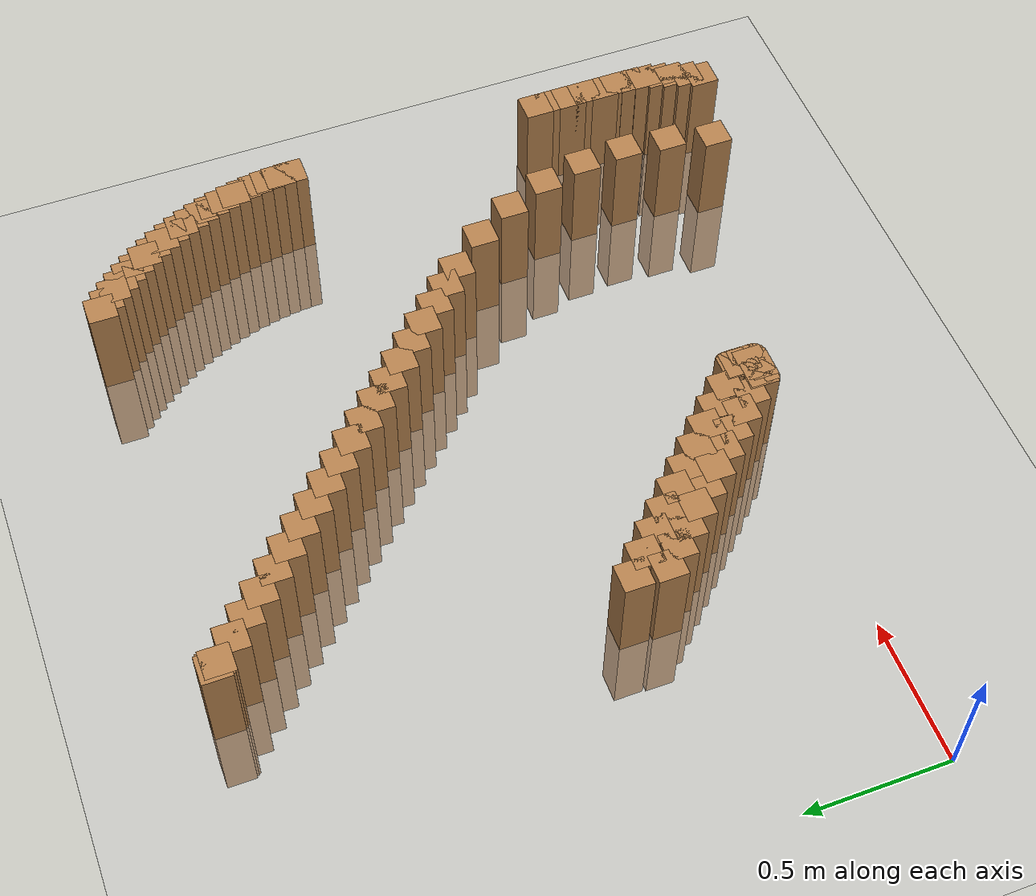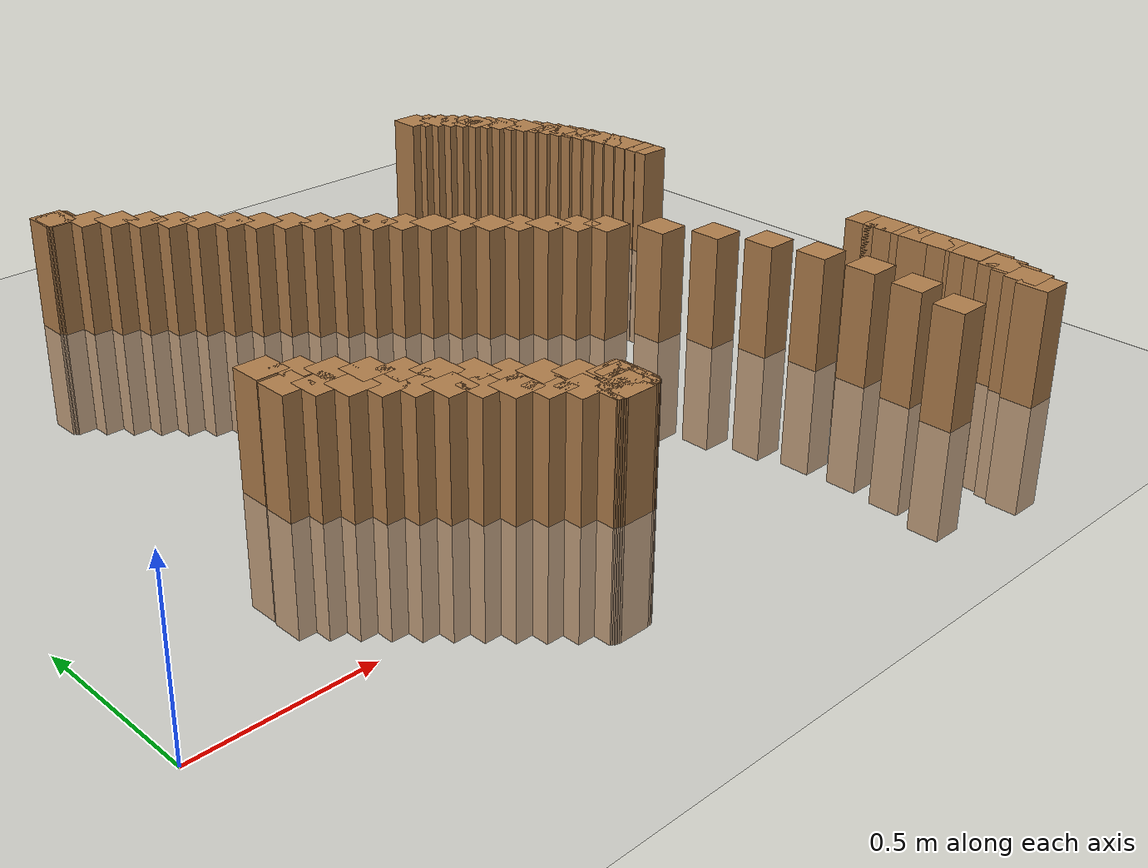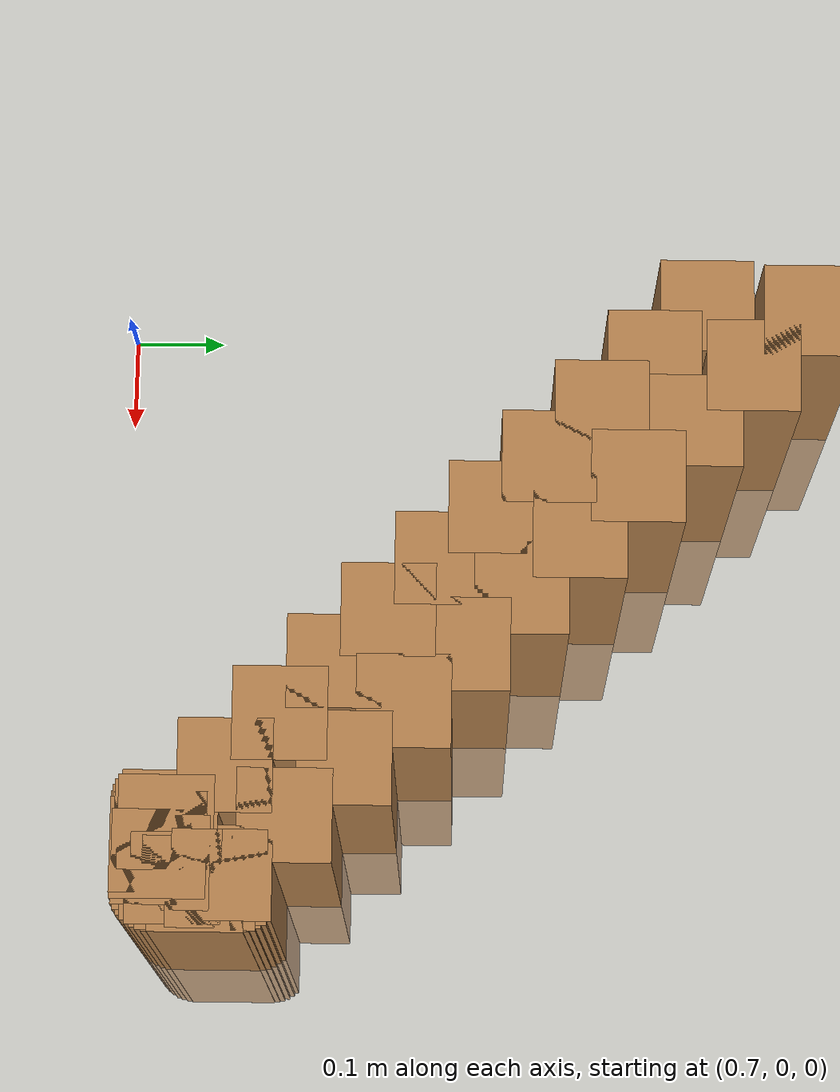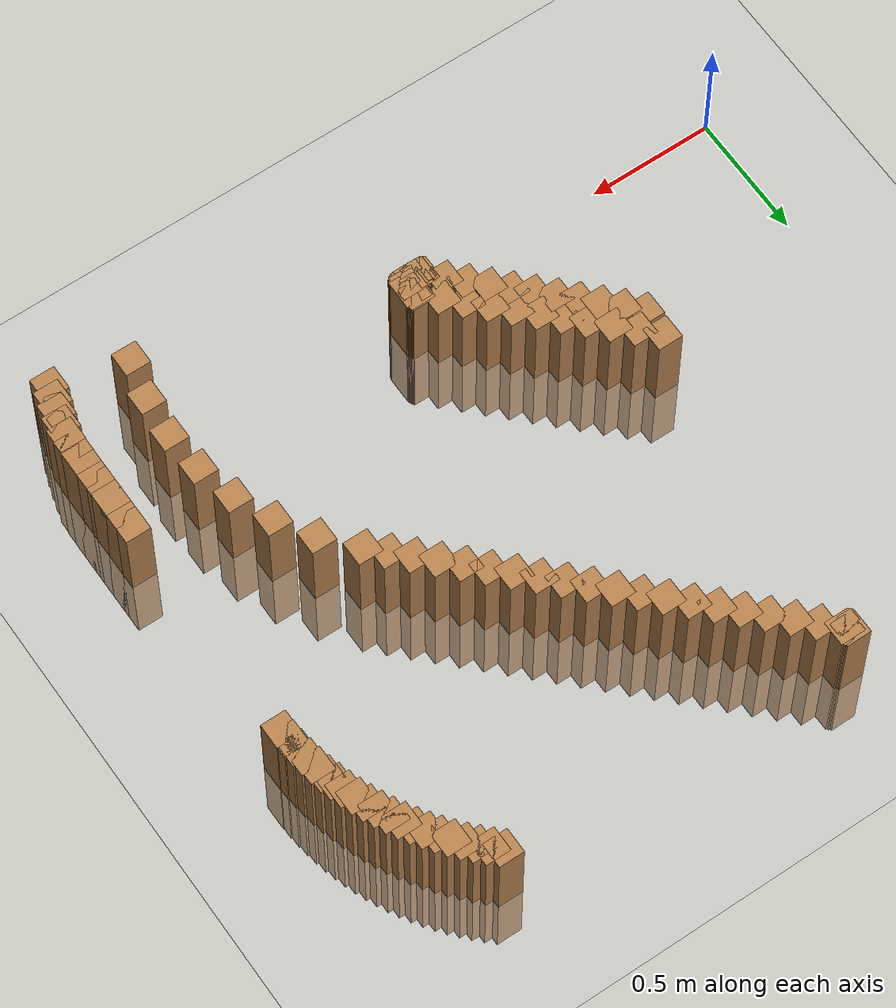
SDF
<sdf version="1.6">
 <world name="default">
  <model name="ground_plane">
   <static>1</static>
   <link name="link">
    <collision name="collision">
     <geometry><plane><normal>0 0 1</normal><size>100 100</size></plane></geometry>
     <surface><friction><ode><mu>100</mu><mu2>50</mu2></ode></friction></surface>
    </collision>
    <visual name="visual">
     <cast_shadows>0</cast_shadows>
     <geometry><plane><normal>0 0 1</normal><size>100 100</size></plane></geometry>
     <material>
      <script><uri>file://media/materials/scripts/gazebo.material</uri><name>Gazebo/Grey</name></script>
     </material>
    </visual>
   </link>
  </model>
  <model name="track">
   <link name="inner_48">
    <pose>0.750307 0.638306 0.000000 0 -0 0</pose>
    <collision name="collision"><geometry><box><size>0.1 0.1 0.7</size></box></geometry></collision>
    <visual name="visual">
     <geometry><box><size>0.1 0.1 0.7</size></box></geometry>
     <material>
      <script><uri>file://media/materials/scripts/gazebo.material</uri><name>Gazebo/Wood</name></script>
     </material>
    </visual>
   </link>
   <link name="inner_49">
    <pose>0.806194 0.582419 0.000000 0 -0 0</pose>
    <collision name="collision"><geometry><box><size>0.1 0.1 0.7</size></box></geometry></collision>
    <visual name="visual">
     <geometry><box><size>0.1 0.1 0.7</size></box></geometry>
     <material>
      <script><uri>file://media/materials/scripts/gazebo.material</uri><name>Gazebo/Wood</name></script>
     </material>
    </visual>
   </link>
   <link name="inner_50">
    <pose>0.862080 0.526533 0.000000 0 -0 0</pose>
    <collision name="collision"><geometry><box><size>0.1 0.1 0.7</size></box></geometry></collision>
    <visual name="visual">
     <geometry><box><size>0.1 0.1 0.7</size></box></geometry>
     <material>
      <script><uri>file://media/materials/scripts/gazebo.material</uri><name>Gazebo/Wood</name></script>
     </material>
    </visual>
   </link>
   <link name="inner_51">
    <pose>0.917967 0.470646 0.000000 0 -0 0</pose>
    <collision name="collision"><geometry><box><size>0.1 0.1 0.7</size></box></geometry></collision>
    <visual name="visual">
     <geometry><box><size>0.1 0.1 0.7</size></box></geometry>
     <material>
      <script><uri>file://media/materials/scripts/gazebo.material</uri><name>Gazebo/Wood</name></script>
     </material>
    </visual>
   </link>
   <link name="inner_52">
    <pose>0.973853 0.414760 0.000000 0 -0 0</pose>
    <collision name="collision"><geometry><box><size>0.1 0.1 0.7</size></box></geometry></collision>
    <visual name="visual">
     <geometry><box><size>0.1 0.1 0.7</size></box></geometry>
     <material>
      <script><uri>file://media/materials/scripts/gazebo.material</uri><name>Gazebo/Wood</name></script>
     </material>
    </visual>
   </link>
   <link name="inner_53">
    <pose>1.029739 0.358874 0.000000 0 -0 0</pose>
    <collision name="collision"><geometry><box><size>0.1 0.1 0.7</size></box></geometry></collision>
    <visual name="visual">
     <geometry><box><size>0.1 0.1 0.7</size></box></geometry>
     <material>
      <script><uri>file://media/materials/scripts/gazebo.material</uri><name>Gazebo/Wood</name></script>
     </material>
    </visual>
   </link>
   <link name="inner_54">
    <pose>1.085626 0.302987 0.000000 0 -0 0</pose>
    <collision name="collision"><geometry><box><size>0.1 0.1 0.7</size></box></geometry></collision>
    <visual name="visual">
     <geometry><box><size>0.1 0.1 0.7</size></box></geometry>
     <material>
      <script><uri>file://media/materials/scripts/gazebo.material</uri><name>Gazebo/Wood</name></script>
     </material>
    </visual>
   </link>
   <link name="inner_55">
    <pose>1.141512 0.247101 0.000000 0 -0 0</pose>
    <collision name="collision"><geometry><box><size>0.1 0.1 0.7</size></box></geometry></collision>
    <visual name="visual">
     <geometry><box><size>0.1 0.1 0.7</size></box></geometry>
     <material>
      <script><uri>file://media/materials/scripts/gazebo.material</uri><name>Gazebo/Wood</name></script>
     </material>
    </visual>
   </link>
   <link name="inner_56">
    <pose>1.197399 0.191214 0.000000 0 -0 0</pose>
    <collision name="collision"><geometry><box><size>0.1 0.1 0.7</size></box></geometry></collision>
    <visual name="visual">
     <geometry><box><size>0.1 0.1 0.7</size></box></geometry>
     <material>
      <script><uri>file://media/materials/scripts/gazebo.material</uri><name>Gazebo/Wood</name></script>
     </material>
    </visual>
   </link>
   <link name="inner_57">
    <pose>1.253285 0.135328 0.000000 0 -0 0</pose>
    <collision name="collision"><geometry><box><size>0.1 0.1 0.7</size></box></geometry></collision>
    <visual name="visual">
     <geometry><box><size>0.1 0.1 0.7</size></box></geometry>
     <material>
      <script><uri>file://media/materials/scripts/gazebo.material</uri><name>Gazebo/Wood</name></script>
     </material>
    </visual>
   </link>
   <link name="inner_58">
    <pose>1.309171 0.079442 0.000000 0 -0 0</pose>
    <collision name="collision"><geometry><box><size>0.1 0.1 0.7</size></box></geometry></collision>
    <visual name="visual">
     <geometry><box><size>0.1 0.1 0.7</size></box></geometry>
     <material>
      <script><uri>file://media/materials/scripts/gazebo.material</uri><name>Gazebo/Wood</name></script>
     </material>
    </visual>
   </link>
   <link name="inner_59">
    <pose>1.314009 0.075310 0.000000 0 -0 0</pose>
    <collision name="collision"><geometry><box><size>0.1 0.1 0.7</size></box></geometry></collision>
    <visual name="visual">
     <geometry><box><size>0.1 0.1 0.7</size></box></geometry>
     <material>
      <script><uri>file://media/materials/scripts/gazebo.material</uri><name>Gazebo/Wood</name></script>
     </material>
    </visual>
   </link>
   <link name="inner_60">
    <pose>1.319433 0.071986 0.000000 0 -0 0</pose>
    <collision name="collision"><geometry><box><size>0.1 0.1 0.7</size></box></geometry></collision>
    <visual name="visual">
     <geometry><box><size>0.1 0.1 0.7</size></box></geometry>
     <material>
      <script><uri>file://media/materials/scripts/gazebo.material</uri><name>Gazebo/Wood</name></script>
     </material>
    </visual>
   </link>
   <link name="inner_61">
    <pose>1.325310 0.069552 0.000000 0 -0 0</pose>
    <collision name="collision"><geometry><box><size>0.1 0.1 0.7</size></box></geometry></collision>
    <visual name="visual">
     <geometry><box><size>0.1 0.1 0.7</size></box></geometry>
     <material>
      <script><uri>file://media/materials/scripts/gazebo.material</uri><name>Gazebo/Wood</name></script>
     </material>
    </visual>
   </link>
   <link name="inner_62">
    <pose>1.331496 0.068067 0.000000 0 -0 0</pose>
    <collision name="collision"><geometry><box><size>0.1 0.1 0.7</size></box></geometry></collision>
    <visual name="visual">
     <geometry><box><size>0.1 0.1 0.7</size></box></geometry>
     <material>
      <script><uri>file://media/materials/scripts/gazebo.material</uri><name>Gazebo/Wood</name></script>
     </material>
    </visual>
   </link>
   <link name="inner_63">
    <pose>1.337838 0.067568 0.000000 0 -0 0</pose>
    <collision name="collision"><geometry><box><size>0.1 0.1 0.7</size></box></geometry></collision>
    <visual name="visual">
     <geometry><box><size>0.1 0.1 0.7</size></box></geometry>
     <material>
      <script><uri>file://media/materials/scripts/gazebo.material</uri><name>Gazebo/Wood</name></script>
     </material>
    </visual>
   </link>
   <link name="inner_64">
    <pose>1.344180 0.068067 0.000000 0 -0 0</pose>
    <collision name="collision"><geometry><box><size>0.1 0.1 0.7</size></box></geometry></collision>
    <visual name="visual">
     <geometry><box><size>0.1 0.1 0.7</size></box></geometry>
     <material>
      <script><uri>file://media/materials/scripts/gazebo.material</uri><name>Gazebo/Wood</name></script>
     </material>
    </visual>
   </link>
   <link name="inner_65">
    <pose>1.350366 0.069552 0.000000 0 -0 0</pose>
    <collision name="collision"><geometry><box><size>0.1 0.1 0.7</size></box></geometry></collision>
    <visual name="visual">
     <geometry><box><size>0.1 0.1 0.7</size></box></geometry>
     <material>
      <script><uri>file://media/materials/scripts/gazebo.material</uri><name>Gazebo/Wood</name></script>
     </material>
    </visual>
   </link>
   <link name="inner_66">
    <pose>1.356243 0.071986 0.000000 0 -0 0</pose>
    <collision name="collision"><geometry><box><size>0.1 0.1 0.7</size></box></geometry></collision>
    <visual name="visual">
     <geometry><box><size>0.1 0.1 0.7</size></box></geometry>
     <material>
      <script><uri>file://media/materials/scripts/gazebo.material</uri><name>Gazebo/Wood</name></script>
     </material>
    </visual>
   </link>
   <link name="inner_67">
    <pose>1.361667 0.075310 0.000000 0 -0 0</pose>
    <collision name="collision"><geometry><box><size>0.1 0.1 0.7</size></box></geometry></collision>
    <visual name="visual">
     <geometry><box><size>0.1 0.1 0.7</size></box></geometry>
     <material>
      <script><uri>file://media/materials/scripts/gazebo.material</uri><name>Gazebo/Wood</name></script>
     </material>
    </visual>
   </link>
   <link name="inner_68">
    <pose>1.366504 0.079442 0.000000 0 -0 0</pose>
    <collision name="collision"><geometry><box><size>0.1 0.1 0.7</size></box></geometry></collision>
    <visual name="visual">
     <geometry><box><size>0.1 0.1 0.7</size></box></geometry>
     <material>
      <script><uri>file://media/materials/scripts/gazebo.material</uri><name>Gazebo/Wood</name></script>
     </material>
    </visual>
   </link>
   <link name="inner_69">
    <pose>1.370636 0.084279 0.000000 0 -0 0</pose>
    <collision name="collision"><geometry><box><size>0.1 0.1 0.7</size></box></geometry></collision>
    <visual name="visual">
     <geometry><box><size>0.1 0.1 0.7</size></box></geometry>
     <material>
      <script><uri>file://media/materials/scripts/gazebo.material</uri><name>Gazebo/Wood</name></script>
     </material>
    </visual>
   </link>
   <link name="inner_70">
    <pose>1.373960 0.089703 0.000000 0 -0 0</pose>
    <collision name="collision"><geometry><box><size>0.1 0.1 0.7</size></box></geometry></collision>
    <visual name="visual">
     <geometry><box><size>0.1 0.1 0.7</size></box></geometry>
     <material>
      <script><uri>file://media/materials/scripts/gazebo.material</uri><name>Gazebo/Wood</name></script>
     </material>
    </visual>
   </link>
   <link name="inner_71">
    <pose>1.376394 0.095580 0.000000 0 -0 0</pose>
    <collision name="collision"><geometry><box><size>0.1 0.1 0.7</size></box></geometry></collision>
    <visual name="visual">
     <geometry><box><size>0.1 0.1 0.7</size></box></geometry>
     <material>
      <script><uri>file://media/materials/scripts/gazebo.material</uri><name>Gazebo/Wood</name></script>
     </material>
    </visual>
   </link>
   <link name="inner_72">
    <pose>1.377879 0.101766 0.000000 0 -0 0</pose>
    <collision name="collision"><geometry><box><size>0.1 0.1 0.7</size></box></geometry></collision>
    <visual name="visual">
     <geometry><box><size>0.1 0.1 0.7</size></box></geometry>
     <material>
      <script><uri>file://media/materials/scripts/gazebo.material</uri><name>Gazebo/Wood</name></script>
     </material>
    </visual>
   </link>
   <link name="inner_73">
    <pose>1.378378 0.108108 0.000000 0 -0 0</pose>
    <collision name="collision"><geometry><box><size>0.1 0.1 0.7</size></box></geometry></collision>
    <visual name="visual">
     <geometry><box><size>0.1 0.1 0.7</size></box></geometry>
     <material>
      <script><uri>file://media/materials/scripts/gazebo.material</uri><name>Gazebo/Wood</name></script>
     </material>
    </visual>
   </link>
   <link name="inner_74">
    <pose>1.377879 0.114450 0.000000 0 -0 0</pose>
    <collision name="collision"><geometry><box><size>0.1 0.1 0.7</size></box></geometry></collision>
    <visual name="visual">
     <geometry><box><size>0.1 0.1 0.7</size></box></geometry>
     <material>
      <script><uri>file://media/materials/scripts/gazebo.material</uri><name>Gazebo/Wood</name></script>
     </material>
    </visual>
   </link>
   <link name="inner_75">
    <pose>1.376394 0.120636 0.000000 0 -0 0</pose>
    <collision name="collision"><geometry><box><size>0.1 0.1 0.7</size></box></geometry></collision>
    <visual name="visual">
     <geometry><box><size>0.1 0.1 0.7</size></box></geometry>
     <material>
      <script><uri>file://media/materials/scripts/gazebo.material</uri><name>Gazebo/Wood</name></script>
     </material>
    </visual>
   </link>
   <link name="inner_76">
    <pose>1.373960 0.126513 0.000000 0 -0 0</pose>
    <collision name="collision"><geometry><box><size>0.1 0.1 0.7</size></box></geometry></collision>
    <visual name="visual">
     <geometry><box><size>0.1 0.1 0.7</size></box></geometry>
     <material>
      <script><uri>file://media/materials/scripts/gazebo.material</uri><name>Gazebo/Wood</name></script>
     </material>
    </visual>
   </link>
   <link name="inner_77">
    <pose>1.370636 0.131937 0.000000 0 -0 0</pose>
    <collision name="collision"><geometry><box><size>0.1 0.1 0.7</size></box></geometry></collision>
    <visual name="visual">
     <geometry><box><size>0.1 0.1 0.7</size></box></geometry>
     <material>
      <script><uri>file://media/materials/scripts/gazebo.material</uri><name>Gazebo/Wood</name></script>
     </material>
    </visual>
   </link>
   <link name="inner_78">
    <pose>1.366504 0.136775 0.000000 0 -0 0</pose>
    <collision name="collision"><geometry><box><size>0.1 0.1 0.7</size></box></geometry></collision>
    <visual name="visual">
     <geometry><box><size>0.1 0.1 0.7</size></box></geometry>
     <material>
      <script><uri>file://media/materials/scripts/gazebo.material</uri><name>Gazebo/Wood</name></script>
     </material>
    </visual>
   </link>
   <link name="inner_79">
    <pose>1.305290 0.197989 0.000000 0 -0 0</pose>
    <collision name="collision"><geometry><box><size>0.1 0.1 0.7</size></box></geometry></collision>
    <visual name="visual">
     <geometry><box><size>0.1 0.1 0.7</size></box></geometry>
     <material>
      <script><uri>file://media/materials/scripts/gazebo.material</uri><name>Gazebo/Wood</name></script>
     </material>
    </visual>
   </link>
   <link name="inner_80">
    <pose>1.244075 0.259203 0.000000 0 -0 0</pose>
    <collision name="collision"><geometry><box><size>0.1 0.1 0.7</size></box></geometry></collision>
    <visual name="visual">
     <geometry><box><size>0.1 0.1 0.7</size></box></geometry>
     <material>
      <script><uri>file://media/materials/scripts/gazebo.material</uri><name>Gazebo/Wood</name></script>
     </material>
    </visual>
   </link>
   <link name="inner_81">
    <pose>1.182861 0.320418 0.000000 0 -0 0</pose>
    <collision name="collision"><geometry><box><size>0.1 0.1 0.7</size></box></geometry></collision>
    <visual name="visual">
     <geometry><box><size>0.1 0.1 0.7</size></box></geometry>
     <material>
      <script><uri>file://media/materials/scripts/gazebo.material</uri><name>Gazebo/Wood</name></script>
     </material>
    </visual>
   </link>
   <link name="inner_82">
    <pose>1.121647 0.381632 0.000000 0 -0 0</pose>
    <collision name="collision"><geometry><box><size>0.1 0.1 0.7</size></box></geometry></collision>
    <visual name="visual">
     <geometry><box><size>0.1 0.1 0.7</size></box></geometry>
     <material>
      <script><uri>file://media/materials/scripts/gazebo.material</uri><name>Gazebo/Wood</name></script>
     </material>
    </visual>
   </link>
   <link name="inner_83">
    <pose>1.060432 0.442847 0.000000 0 -0 0</pose>
    <collision name="collision"><geometry><box><size>0.1 0.1 0.7</size></box></geometry></collision>
    <visual name="visual">
     <geometry><box><size>0.1 0.1 0.7</size></box></geometry>
     <material>
      <script><uri>file://media/materials/scripts/gazebo.material</uri><name>Gazebo/Wood</name></script>
     </material>
    </visual>
   </link>
   <link name="inner_84">
    <pose>0.999218 0.504061 0.000000 0 -0 0</pose>
    <collision name="collision"><geometry><box><size>0.1 0.1 0.7</size></box></geometry></collision>
    <visual name="visual">
     <geometry><box><size>0.1 0.1 0.7</size></box></geometry>
     <material>
      <script><uri>file://media/materials/scripts/gazebo.material</uri><name>Gazebo/Wood</name></script>
     </material>
    </visual>
   </link>
   <link name="inner_85">
    <pose>0.938003 0.565276 0.000000 0 -0 0</pose>
    <collision name="collision"><geometry><box><size>0.1 0.1 0.7</size></box></geometry></collision>
    <visual name="visual">
     <geometry><box><size>0.1 0.1 0.7</size></box></geometry>
     <material>
      <script><uri>file://media/materials/scripts/gazebo.material</uri><name>Gazebo/Wood</name></script>
     </material>
    </visual>
   </link>
   <link name="inner_86">
    <pose>0.876789 0.626490 0.000000 0 -0 0</pose>
    <collision name="collision"><geometry><box><size>0.1 0.1 0.7</size></box></geometry></collision>
    <visual name="visual">
     <geometry><box><size>0.1 0.1 0.7</size></box></geometry>
     <material>
      <script><uri>file://media/materials/scripts/gazebo.material</uri><name>Gazebo/Wood</name></script>
     </material>
    </visual>
   </link>
   <link name="inner_87">
    <pose>0.815574 0.687705 0.000000 0 -0 0</pose>
    <collision name="collision"><geometry><box><size>0.1 0.1 0.7</size></box></geometry></collision>
    <visual name="visual">
     <geometry><box><size>0.1 0.1 0.7</size></box></geometry>
     <material>
      <script><uri>file://media/materials/scripts/gazebo.material</uri><name>Gazebo/Wood</name></script>
     </material>
    </visual>
   </link>
   <link name="inner_88">
    <pose>0.754360 0.748919 0.000000 0 -0 0</pose>
    <collision name="collision"><geometry><box><size>0.1 0.1 0.7</size></box></geometry></collision>
    <visual name="visual">
     <geometry><box><size>0.1 0.1 0.7</size></box></geometry>
     <material>
      <script><uri>file://media/materials/scripts/gazebo.material</uri><name>Gazebo/Wood</name></script>
     </material>
    </visual>
   </link>
   <link name="outer_71">
    <pose>2.327451 -0.213437 0.000000 0 -0 0</pose>
    <collision name="collision"><geometry><box><size>0.1 0.1 0.7</size></box></geometry></collision>
    <visual name="visual">
     <geometry><box><size>0.1 0.1 0.7</size></box></geometry>
     <material>
      <script><uri>file://media/materials/scripts/gazebo.material</uri><name>Gazebo/Wood</name></script>
     </material>
    </visual>
   </link>
   <link name="outer_72">
    <pose>2.365568 -0.054668 0.000000 0 -0 0</pose>
    <collision name="collision"><geometry><box><size>0.1 0.1 0.7</size></box></geometry></collision>
    <visual name="visual">
     <geometry><box><size>0.1 0.1 0.7</size></box></geometry>
     <material>
      <script><uri>file://media/materials/scripts/gazebo.material</uri><name>Gazebo/Wood</name></script>
     </material>
    </visual>
   </link>
   <link name="outer_73">
    <pose>2.378378 0.108108 0.000000 0 -0 0</pose>
    <collision name="collision"><geometry><box><size>0.1 0.1 0.7</size></box></geometry></collision>
    <visual name="visual">
     <geometry><box><size>0.1 0.1 0.7</size></box></geometry>
     <material>
      <script><uri>file://media/materials/scripts/gazebo.material</uri><name>Gazebo/Wood</name></script>
     </material>
    </visual>
   </link>
   <link name="outer_74">
    <pose>2.365568 0.270885 0.000000 0 -0 0</pose>
    <collision name="collision"><geometry><box><size>0.1 0.1 0.7</size></box></geometry></collision>
    <visual name="visual">
     <geometry><box><size>0.1 0.1 0.7</size></box></geometry>
     <material>
      <script><uri>file://media/materials/scripts/gazebo.material</uri><name>Gazebo/Wood</name></script>
     </material>
    </visual>
   </link>
   <link name="outer_75">
    <pose>2.327451 0.429653 0.000000 0 -0 0</pose>
    <collision name="collision"><geometry><box><size>0.1 0.1 0.7</size></box></geometry></collision>
    <visual name="visual">
     <geometry><box><size>0.1 0.1 0.7</size></box></geometry>
     <material>
      <script><uri>file://media/materials/scripts/gazebo.material</uri><name>Gazebo/Wood</name></script>
     </material>
    </visual>
   </link>
   <link name="outer_76">
    <pose>2.264966 0.580504 0.000000 0 -0 0</pose>
    <collision name="collision"><geometry><box><size>0.1 0.1 0.7</size></box></geometry></collision>
    <visual name="visual">
     <geometry><box><size>0.1 0.1 0.7</size></box></geometry>
     <material>
      <script><uri>file://media/materials/scripts/gazebo.material</uri><name>Gazebo/Wood</name></script>
     </material>
    </visual>
   </link>
   <link name="outer_77">
    <pose>2.179653 0.719722 0.000000 0 -0 0</pose>
    <collision name="collision"><geometry><box><size>0.1 0.1 0.7</size></box></geometry></collision>
    <visual name="visual">
     <geometry><box><size>0.1 0.1 0.7</size></box></geometry>
     <material>
      <script><uri>file://media/materials/scripts/gazebo.material</uri><name>Gazebo/Wood</name></script>
     </material>
    </visual>
   </link>
   <link name="outer_78">
    <pose>2.073611 0.843881 0.000000 0 -0 0</pose>
    <collision name="collision"><geometry><box><size>0.1 0.1 0.7</size></box></geometry></collision>
    <visual name="visual">
     <geometry><box><size>0.1 0.1 0.7</size></box></geometry>
     <material>
      <script><uri>file://media/materials/scripts/gazebo.material</uri><name>Gazebo/Wood</name></script>
     </material>
    </visual>
   </link>
   <link name="outer_79">
    <pose>2.012397 0.905096 0.000000 0 -0 0</pose>
    <collision name="collision"><geometry><box><size>0.1 0.1 0.7</size></box></geometry></collision>
    <visual name="visual">
     <geometry><box><size>0.1 0.1 0.7</size></box></geometry>
     <material>
      <script><uri>file://media/materials/scripts/gazebo.material</uri><name>Gazebo/Wood</name></script>
     </material>
    </visual>
   </link>
   <link name="outer_80">
    <pose>1.951182 0.966310 0.000000 0 -0 0</pose>
    <collision name="collision"><geometry><box><size>0.1 0.1 0.7</size></box></geometry></collision>
    <visual name="visual">
     <geometry><box><size>0.1 0.1 0.7</size></box></geometry>
     <material>
      <script><uri>file://media/materials/scripts/gazebo.material</uri><name>Gazebo/Wood</name></script>
     </material>
    </visual>
   </link>
   <link name="outer_81">
    <pose>1.889968 1.027525 0.000000 0 -0 0</pose>
    <collision name="collision"><geometry><box><size>0.1 0.1 0.7</size></box></geometry></collision>
    <visual name="visual">
     <geometry><box><size>0.1 0.1 0.7</size></box></geometry>
     <material>
      <script><uri>file://media/materials/scripts/gazebo.material</uri><name>Gazebo/Wood</name></script>
     </material>
    </visual>
   </link>
   <link name="outer_82">
    <pose>1.828753 1.088739 0.000000 0 -0 0</pose>
    <collision name="collision"><geometry><box><size>0.1 0.1 0.7</size></box></geometry></collision>
    <visual name="visual">
     <geometry><box><size>0.1 0.1 0.7</size></box></geometry>
     <material>
      <script><uri>file://media/materials/scripts/gazebo.material</uri><name>Gazebo/Wood</name></script>
     </material>
    </visual>
   </link>
   <link name="outer_83">
    <pose>1.767539 1.149954 0.000000 0 -0 0</pose>
    <collision name="collision"><geometry><box><size>0.1 0.1 0.7</size></box></geometry></collision>
    <visual name="visual">
     <geometry><box><size>0.1 0.1 0.7</size></box></geometry>
     <material>
      <script><uri>file://media/materials/scripts/gazebo.material</uri><name>Gazebo/Wood</name></script>
     </material>
    </visual>
   </link>
   <link name="outer_84">
    <pose>1.706324 1.211168 0.000000 0 -0 0</pose>
    <collision name="collision"><geometry><box><size>0.1 0.1 0.7</size></box></geometry></collision>
    <visual name="visual">
     <geometry><box><size>0.1 0.1 0.7</size></box></geometry>
     <material>
      <script><uri>file://media/materials/scripts/gazebo.material</uri><name>Gazebo/Wood</name></script>
     </material>
    </visual>
   </link>
   <link name="outer_85">
    <pose>1.645110 1.272382 0.000000 0 -0 0</pose>
    <collision name="collision"><geometry><box><size>0.1 0.1 0.7</size></box></geometry></collision>
    <visual name="visual">
     <geometry><box><size>0.1 0.1 0.7</size></box></geometry>
     <material>
      <script><uri>file://media/materials/scripts/gazebo.material</uri><name>Gazebo/Wood</name></script>
     </material>
    </visual>
   </link>
   <link name="outer_86">
    <pose>1.583896 1.333597 0.000000 0 -0 0</pose>
    <collision name="collision"><geometry><box><size>0.1 0.1 0.7</size></box></geometry></collision>
    <visual name="visual">
     <geometry><box><size>0.1 0.1 0.7</size></box></geometry>
     <material>
      <script><uri>file://media/materials/scripts/gazebo.material</uri><name>Gazebo/Wood</name></script>
     </material>
    </visual>
   </link>
   <link name="outer_87">
    <pose>1.522681 1.394811 0.000000 0 -0 0</pose>
    <collision name="collision"><geometry><box><size>0.1 0.1 0.7</size></box></geometry></collision>
    <visual name="visual">
     <geometry><box><size>0.1 0.1 0.7</size></box></geometry>
     <material>
      <script><uri>file://media/materials/scripts/gazebo.material</uri><name>Gazebo/Wood</name></script>
     </material>
    </visual>
   </link>
   <link name="outer_88">
    <pose>1.461467 1.456026 0.000000 0 -0 0</pose>
    <collision name="collision"><geometry><box><size>0.1 0.1 0.7</size></box></geometry></collision>
    <visual name="visual">
     <geometry><box><size>0.1 0.1 0.7</size></box></geometry>
     <material>
      <script><uri>file://media/materials/scripts/gazebo.material</uri><name>Gazebo/Wood</name></script>
     </material>
    </visual>
   </link>
   <link name="outer_89">
    <pose>1.400252 1.517240 0.000000 0 -0 0</pose>
    <collision name="collision"><geometry><box><size>0.1 0.1 0.7</size></box></geometry></collision>
    <visual name="visual">
     <geometry><box><size>0.1 0.1 0.7</size></box></geometry>
     <material>
      <script><uri>file://media/materials/scripts/gazebo.material</uri><name>Gazebo/Wood</name></script>
     </material>
    </visual>
   </link>
   <link name="outer_90">
    <pose>1.339038 1.578455 0.000000 0 -0 0</pose>
    <collision name="collision"><geometry><box><size>0.1 0.1 0.7</size></box></geometry></collision>
    <visual name="visual">
     <geometry><box><size>0.1 0.1 0.7</size></box></geometry>
     <material>
      <script><uri>file://media/materials/scripts/gazebo.material</uri><name>Gazebo/Wood</name></script>
     </material>
    </visual>
   </link>
   <link name="outer_91">
    <pose>1.277823 1.639669 0.000000 0 -0 0</pose>
    <collision name="collision"><geometry><box><size>0.1 0.1 0.7</size></box></geometry></collision>
    <visual name="visual">
     <geometry><box><size>0.1 0.1 0.7</size></box></geometry>
     <material>
      <script><uri>file://media/materials/scripts/gazebo.material</uri><name>Gazebo/Wood</name></script>
     </material>
    </visual>
   </link>
   <link name="outer_92">
    <pose>1.216609 1.700883 0.000000 0 -0 0</pose>
    <collision name="collision"><geometry><box><size>0.1 0.1 0.7</size></box></geometry></collision>
    <visual name="visual">
     <geometry><box><size>0.1 0.1 0.7</size></box></geometry>
     <material>
      <script><uri>file://media/materials/scripts/gazebo.material</uri><name>Gazebo/Wood</name></script>
     </material>
    </visual>
   </link>
   <link name="outer_93">
    <pose>1.155395 1.762098 0.000000 0 -0 0</pose>
    <collision name="collision"><geometry><box><size>0.1 0.1 0.7</size></box></geometry></collision>
    <visual name="visual">
     <geometry><box><size>0.1 0.1 0.7</size></box></geometry>
     <material>
      <script><uri>file://media/materials/scripts/gazebo.material</uri><name>Gazebo/Wood</name></script>
     </material>
    </visual>
   </link>
   <link name="outer_94">
    <pose>1.094180 1.823312 0.000000 0 -0 0</pose>
    <collision name="collision"><geometry><box><size>0.1 0.1 0.7</size></box></geometry></collision>
    <visual name="visual">
     <geometry><box><size>0.1 0.1 0.7</size></box></geometry>
     <material>
      <script><uri>file://media/materials/scripts/gazebo.material</uri><name>Gazebo/Wood</name></script>
     </material>
    </visual>
   </link>
   <link name="outer_95">
    <pose>1.032966 1.884527 0.000000 0 -0 0</pose>
    <collision name="collision"><geometry><box><size>0.1 0.1 0.7</size></box></geometry></collision>
    <visual name="visual">
     <geometry><box><size>0.1 0.1 0.7</size></box></geometry>
     <material>
      <script><uri>file://media/materials/scripts/gazebo.material</uri><name>Gazebo/Wood</name></script>
     </material>
    </visual>
   </link>
   <link name="outer_96">
    <pose>0.971751 1.945741 0.000000 0 -0 0</pose>
    <collision name="collision"><geometry><box><size>0.1 0.1 0.7</size></box></geometry></collision>
    <visual name="visual">
     <geometry><box><size>0.1 0.1 0.7</size></box></geometry>
     <material>
      <script><uri>file://media/materials/scripts/gazebo.material</uri><name>Gazebo/Wood</name></script>
     </material>
    </visual>
   </link>
   <link name="outer_97">
    <pose>0.910537 2.006956 0.000000 0 -0 0</pose>
    <collision name="collision"><geometry><box><size>0.1 0.1 0.7</size></box></geometry></collision>
    <visual name="visual">
     <geometry><box><size>0.1 0.1 0.7</size></box></geometry>
     <material>
      <script><uri>file://media/materials/scripts/gazebo.material</uri><name>Gazebo/Wood</name></script>
     </material>
    </visual>
   </link>
   <link name="outer_98">
    <pose>0.903823 2.014088 0.000000 0 -0 0</pose>
    <collision name="collision"><geometry><box><size>0.1 0.1 0.7</size></box></geometry></collision>
    <visual name="visual">
     <geometry><box><size>0.1 0.1 0.7</size></box></geometry>
     <material>
      <script><uri>file://media/materials/scripts/gazebo.material</uri><name>Gazebo/Wood</name></script>
     </material>
    </visual>
   </link>
   <link name="outer_99">
    <pose>0.897551 2.021613 0.000000 0 -0 0</pose>
    <collision name="collision"><geometry><box><size>0.1 0.1 0.7</size></box></geometry></collision>
    <visual name="visual">
     <geometry><box><size>0.1 0.1 0.7</size></box></geometry>
     <material>
      <script><uri>file://media/materials/scripts/gazebo.material</uri><name>Gazebo/Wood</name></script>
     </material>
    </visual>
   </link>
   <link name="outer_165">
    <pose>2.311484 2.011904 0.000000 0 -0 0</pose>
    <collision name="collision"><geometry><box><size>0.1 0.1 0.7</size></box></geometry></collision>
    <visual name="visual">
     <geometry><box><size>0.1 0.1 0.7</size></box></geometry>
     <material>
      <script><uri>file://media/materials/scripts/gazebo.material</uri><name>Gazebo/Wood</name></script>
     </material>
    </visual>
   </link>
   <link name="outer_166">
    <pose>2.343486 1.982381 0.000000 0 -0 0</pose>
    <collision name="collision"><geometry><box><size>0.1 0.1 0.7</size></box></geometry></collision>
    <visual name="visual">
     <geometry><box><size>0.1 0.1 0.7</size></box></geometry>
     <material>
      <script><uri>file://media/materials/scripts/gazebo.material</uri><name>Gazebo/Wood</name></script>
     </material>
    </visual>
   </link>
   <link name="outer_167">
    <pose>2.374273 1.951594 0.000000 0 -0 0</pose>
    <collision name="collision"><geometry><box><size>0.1 0.1 0.7</size></box></geometry></collision>
    <visual name="visual">
     <geometry><box><size>0.1 0.1 0.7</size></box></geometry>
     <material>
      <script><uri>file://media/materials/scripts/gazebo.material</uri><name>Gazebo/Wood</name></script>
     </material>
    </visual>
   </link>
   <link name="outer_168">
    <pose>2.403795 1.919592 0.000000 0 -0 0</pose>
    <collision name="collision"><geometry><box><size>0.1 0.1 0.7</size></box></geometry></collision>
    <visual name="visual">
     <geometry><box><size>0.1 0.1 0.7</size></box></geometry>
     <material>
      <script><uri>file://media/materials/scripts/gazebo.material</uri><name>Gazebo/Wood</name></script>
     </material>
    </visual>
   </link>
   <link name="outer_169">
    <pose>2.432005 1.886427 0.000000 0 -0 0</pose>
    <collision name="collision"><geometry><box><size>0.1 0.1 0.7</size></box></geometry></collision>
    <visual name="visual">
     <geometry><box><size>0.1 0.1 0.7</size></box></geometry>
     <material>
      <script><uri>file://media/materials/scripts/gazebo.material</uri><name>Gazebo/Wood</name></script>
     </material>
    </visual>
   </link>
   <link name="outer_170">
    <pose>2.458857 1.852154 0.000000 0 -0 0</pose>
    <collision name="collision"><geometry><box><size>0.1 0.1 0.7</size></box></geometry></collision>
    <visual name="visual">
     <geometry><box><size>0.1 0.1 0.7</size></box></geometry>
     <material>
      <script><uri>file://media/materials/scripts/gazebo.material</uri><name>Gazebo/Wood</name></script>
     </material>
    </visual>
   </link>
   <link name="outer_171">
    <pose>2.484307 1.816827 0.000000 0 -0 0</pose>
    <collision name="collision"><geometry><box><size>0.1 0.1 0.7</size></box></geometry></collision>
    <visual name="visual">
     <geometry><box><size>0.1 0.1 0.7</size></box></geometry>
     <material>
      <script><uri>file://media/materials/scripts/gazebo.material</uri><name>Gazebo/Wood</name></script>
     </material>
    </visual>
   </link>
   <link name="outer_172">
    <pose>2.508314 1.780504 0.000000 0 -0 0</pose>
    <collision name="collision"><geometry><box><size>0.1 0.1 0.7</size></box></geometry></collision>
    <visual name="visual">
     <geometry><box><size>0.1 0.1 0.7</size></box></geometry>
     <material>
      <script><uri>file://media/materials/scripts/gazebo.material</uri><name>Gazebo/Wood</name></script>
     </material>
    </visual>
   </link>
   <link name="outer_173">
    <pose>2.530838 1.743243 0.000000 0 -0 0</pose>
    <collision name="collision"><geometry><box><size>0.1 0.1 0.7</size></box></geometry></collision>
    <visual name="visual">
     <geometry><box><size>0.1 0.1 0.7</size></box></geometry>
     <material>
      <script><uri>file://media/materials/scripts/gazebo.material</uri><name>Gazebo/Wood</name></script>
     </material>
    </visual>
   </link>
   <link name="outer_174">
    <pose>2.551844 1.705106 0.000000 0 -0 0</pose>
    <collision name="collision"><geometry><box><size>0.1 0.1 0.7</size></box></geometry></collision>
    <visual name="visual">
     <geometry><box><size>0.1 0.1 0.7</size></box></geometry>
     <material>
      <script><uri>file://media/materials/scripts/gazebo.material</uri><name>Gazebo/Wood</name></script>
     </material>
    </visual>
   </link>
   <link name="outer_175">
    <pose>2.571298 1.666154 0.000000 0 -0 0</pose>
    <collision name="collision"><geometry><box><size>0.1 0.1 0.7</size></box></geometry></collision>
    <visual name="visual">
     <geometry><box><size>0.1 0.1 0.7</size></box></geometry>
     <material>
      <script><uri>file://media/materials/scripts/gazebo.material</uri><name>Gazebo/Wood</name></script>
     </material>
    </visual>
   </link>
   <link name="outer_176">
    <pose>2.589167 1.626450 0.000000 0 -0 0</pose>
    <collision name="collision"><geometry><box><size>0.1 0.1 0.7</size></box></geometry></collision>
    <visual name="visual">
     <geometry><box><size>0.1 0.1 0.7</size></box></geometry>
     <material>
      <script><uri>file://media/materials/scripts/gazebo.material</uri><name>Gazebo/Wood</name></script>
     </material>
    </visual>
   </link>
   <link name="outer_177">
    <pose>2.605423 1.586059 0.000000 0 -0 0</pose>
    <collision name="collision"><geometry><box><size>0.1 0.1 0.7</size></box></geometry></collision>
    <visual name="visual">
     <geometry><box><size>0.1 0.1 0.7</size></box></geometry>
     <material>
      <script><uri>file://media/materials/scripts/gazebo.material</uri><name>Gazebo/Wood</name></script>
     </material>
    </visual>
   </link>
   <link name="outer_178">
    <pose>2.620039 1.545046 0.000000 0 -0 0</pose>
    <collision name="collision"><geometry><box><size>0.1 0.1 0.7</size></box></geometry></collision>
    <visual name="visual">
     <geometry><box><size>0.1 0.1 0.7</size></box></geometry>
     <material>
      <script><uri>file://media/materials/scripts/gazebo.material</uri><name>Gazebo/Wood</name></script>
     </material>
    </visual>
   </link>
   <link name="outer_179">
    <pose>2.632993 1.503478 0.000000 0 -0 0</pose>
    <collision name="collision"><geometry><box><size>0.1 0.1 0.7</size></box></geometry></collision>
    <visual name="visual">
     <geometry><box><size>0.1 0.1 0.7</size></box></geometry>
     <material>
      <script><uri>file://media/materials/scripts/gazebo.material</uri><name>Gazebo/Wood</name></script>
     </material>
    </visual>
   </link>
   <link name="outer_180">
    <pose>2.644261 1.461422 0.000000 0 -0 0</pose>
    <collision name="collision"><geometry><box><size>0.1 0.1 0.7</size></box></geometry></collision>
    <visual name="visual">
     <geometry><box><size>0.1 0.1 0.7</size></box></geometry>
     <material>
      <script><uri>file://media/materials/scripts/gazebo.material</uri><name>Gazebo/Wood</name></script>
     </material>
    </visual>
   </link>
   <link name="outer_181">
    <pose>2.653828 1.418947 0.000000 0 -0 0</pose>
    <collision name="collision"><geometry><box><size>0.1 0.1 0.7</size></box></geometry></collision>
    <visual name="visual">
     <geometry><box><size>0.1 0.1 0.7</size></box></geometry>
     <material>
      <script><uri>file://media/materials/scripts/gazebo.material</uri><name>Gazebo/Wood</name></script>
     </material>
    </visual>
   </link>
   <link name="outer_182">
    <pose>2.661676 1.376120 0.000000 0 -0 0</pose>
    <collision name="collision"><geometry><box><size>0.1 0.1 0.7</size></box></geometry></collision>
    <visual name="visual">
     <geometry><box><size>0.1 0.1 0.7</size></box></geometry>
     <material>
      <script><uri>file://media/materials/scripts/gazebo.material</uri><name>Gazebo/Wood</name></script>
     </material>
    </visual>
   </link>
   <link name="outer_183">
    <pose>2.667793 1.333013 0.000000 0 -0 0</pose>
    <collision name="collision"><geometry><box><size>0.1 0.1 0.7</size></box></geometry></collision>
    <visual name="visual">
     <geometry><box><size>0.1 0.1 0.7</size></box></geometry>
     <material>
      <script><uri>file://media/materials/scripts/gazebo.material</uri><name>Gazebo/Wood</name></script>
     </material>
    </visual>
   </link>
   <link name="outer_184">
    <pose>2.672170 1.289694 0.000000 0 -0 0</pose>
    <collision name="collision"><geometry><box><size>0.1 0.1 0.7</size></box></geometry></collision>
    <visual name="visual">
     <geometry><box><size>0.1 0.1 0.7</size></box></geometry>
     <material>
      <script><uri>file://media/materials/scripts/gazebo.material</uri><name>Gazebo/Wood</name></script>
     </material>
    </visual>
   </link>
   <link name="outer_185">
    <pose>2.674799 1.246233 0.000000 0 -0 0</pose>
    <collision name="collision"><geometry><box><size>0.1 0.1 0.7</size></box></geometry></collision>
    <visual name="visual">
     <geometry><box><size>0.1 0.1 0.7</size></box></geometry>
     <material>
      <script><uri>file://media/materials/scripts/gazebo.material</uri><name>Gazebo/Wood</name></script>
     </material>
    </visual>
   </link>
   <link name="outer_200">
    <pose>2.675676 0.326458 0.000000 0 -0 0</pose>
    <collision name="collision"><geometry><box><size>0.1 0.1 0.7</size></box></geometry></collision>
    <visual name="visual">
     <geometry><box><size>0.1 0.1 0.7</size></box></geometry>
     <material>
      <script><uri>file://media/materials/scripts/gazebo.material</uri><name>Gazebo/Wood</name></script>
     </material>
    </visual>
   </link>
   <link name="outer_201">
    <pose>2.675676 0.263869 0.000000 0 -0 0</pose>
    <collision name="collision"><geometry><box><size>0.1 0.1 0.7</size></box></geometry></collision>
    <visual name="visual">
     <geometry><box><size>0.1 0.1 0.7</size></box></geometry>
     <material>
      <script><uri>file://media/materials/scripts/gazebo.material</uri><name>Gazebo/Wood</name></script>
     </material>
    </visual>
   </link>
   <link name="outer_202">
    <pose>2.675676 0.201280 0.000000 0 -0 0</pose>
    <collision name="collision"><geometry><box><size>0.1 0.1 0.7</size></box></geometry></collision>
    <visual name="visual">
     <geometry><box><size>0.1 0.1 0.7</size></box></geometry>
     <material>
      <script><uri>file://media/materials/scripts/gazebo.material</uri><name>Gazebo/Wood</name></script>
     </material>
    </visual>
   </link>
   <link name="outer_203">
    <pose>2.675676 0.138691 0.000000 0 -0 0</pose>
    <collision name="collision"><geometry><box><size>0.1 0.1 0.7</size></box></geometry></collision>
    <visual name="visual">
     <geometry><box><size>0.1 0.1 0.7</size></box></geometry>
     <material>
      <script><uri>file://media/materials/scripts/gazebo.material</uri><name>Gazebo/Wood</name></script>
     </material>
    </visual>
   </link>
   <link name="outer_204">
    <pose>2.675676 0.076102 0.000000 0 -0 0</pose>
    <collision name="collision"><geometry><box><size>0.1 0.1 0.7</size></box></geometry></collision>
    <visual name="visual">
     <geometry><box><size>0.1 0.1 0.7</size></box></geometry>
     <material>
      <script><uri>file://media/materials/scripts/gazebo.material</uri><name>Gazebo/Wood</name></script>
     </material>
    </visual>
   </link>
   <link name="outer_205">
    <pose>2.675676 0.013514 0.000000 0 -0 0</pose>
    <collision name="collision"><geometry><box><size>0.1 0.1 0.7</size></box></geometry></collision>
    <visual name="visual">
     <geometry><box><size>0.1 0.1 0.7</size></box></geometry>
     <material>
      <script><uri>file://media/materials/scripts/gazebo.material</uri><name>Gazebo/Wood</name></script>
     </material>
    </visual>
   </link>
   <link name="outer_206">
    <pose>2.674793 -0.038160 0.000000 0 -0 0</pose>
    <collision name="collision"><geometry><box><size>0.1 0.1 0.7</size></box></geometry></collision>
    <visual name="visual">
     <geometry><box><size>0.1 0.1 0.7</size></box></geometry>
     <material>
      <script><uri>file://media/materials/scripts/gazebo.material</uri><name>Gazebo/Wood</name></script>
     </material>
    </visual>
   </link>
   <link name="outer_207">
    <pose>2.672147 -0.089772 0.000000 0 -0 0</pose>
    <collision name="collision"><geometry><box><size>0.1 0.1 0.7</size></box></geometry></collision>
    <visual name="visual">
     <geometry><box><size>0.1 0.1 0.7</size></box></geometry>
     <material>
      <script><uri>file://media/materials/scripts/gazebo.material</uri><name>Gazebo/Wood</name></script>
     </material>
    </visual>
   </link>
   <link name="outer_208">
    <pose>2.660089 -0.140478 0.000000 0 -0 0</pose>
    <collision name="collision"><geometry><box><size>0.1 0.1 0.7</size></box></geometry></collision>
    <visual name="visual">
     <geometry><box><size>0.1 0.1 0.7</size></box></geometry>
     <material>
      <script><uri>file://media/materials/scripts/gazebo.material</uri><name>Gazebo/Wood</name></script>
     </material>
    </visual>
   </link>
   <link name="outer_209">
    <pose>2.646337 -0.190482 0.000000 0 -0 0</pose>
    <collision name="collision"><geometry><box><size>0.1 0.1 0.7</size></box></geometry></collision>
    <visual name="visual">
     <geometry><box><size>0.1 0.1 0.7</size></box></geometry>
     <material>
      <script><uri>file://media/materials/scripts/gazebo.material</uri><name>Gazebo/Wood</name></script>
     </material>
    </visual>
   </link>
   <link name="outer_210">
    <pose>2.630927 -0.239727 0.000000 0 -0 0</pose>
    <collision name="collision"><geometry><box><size>0.1 0.1 0.7</size></box></geometry></collision>
    <visual name="visual">
     <geometry><box><size>0.1 0.1 0.7</size></box></geometry>
     <material>
      <script><uri>file://media/materials/scripts/gazebo.material</uri><name>Gazebo/Wood</name></script>
     </material>
    </visual>
   </link>
   <link name="outer_211">
    <pose>2.613893 -0.288160 0.000000 0 -0 0</pose>
    <collision name="collision"><geometry><box><size>0.1 0.1 0.7</size></box></geometry></collision>
    <visual name="visual">
     <geometry><box><size>0.1 0.1 0.7</size></box></geometry>
     <material>
      <script><uri>file://media/materials/scripts/gazebo.material</uri><name>Gazebo/Wood</name></script>
     </material>
    </visual>
   </link>
   <static>1</static>
  </model>
 </world>
</sdf>
